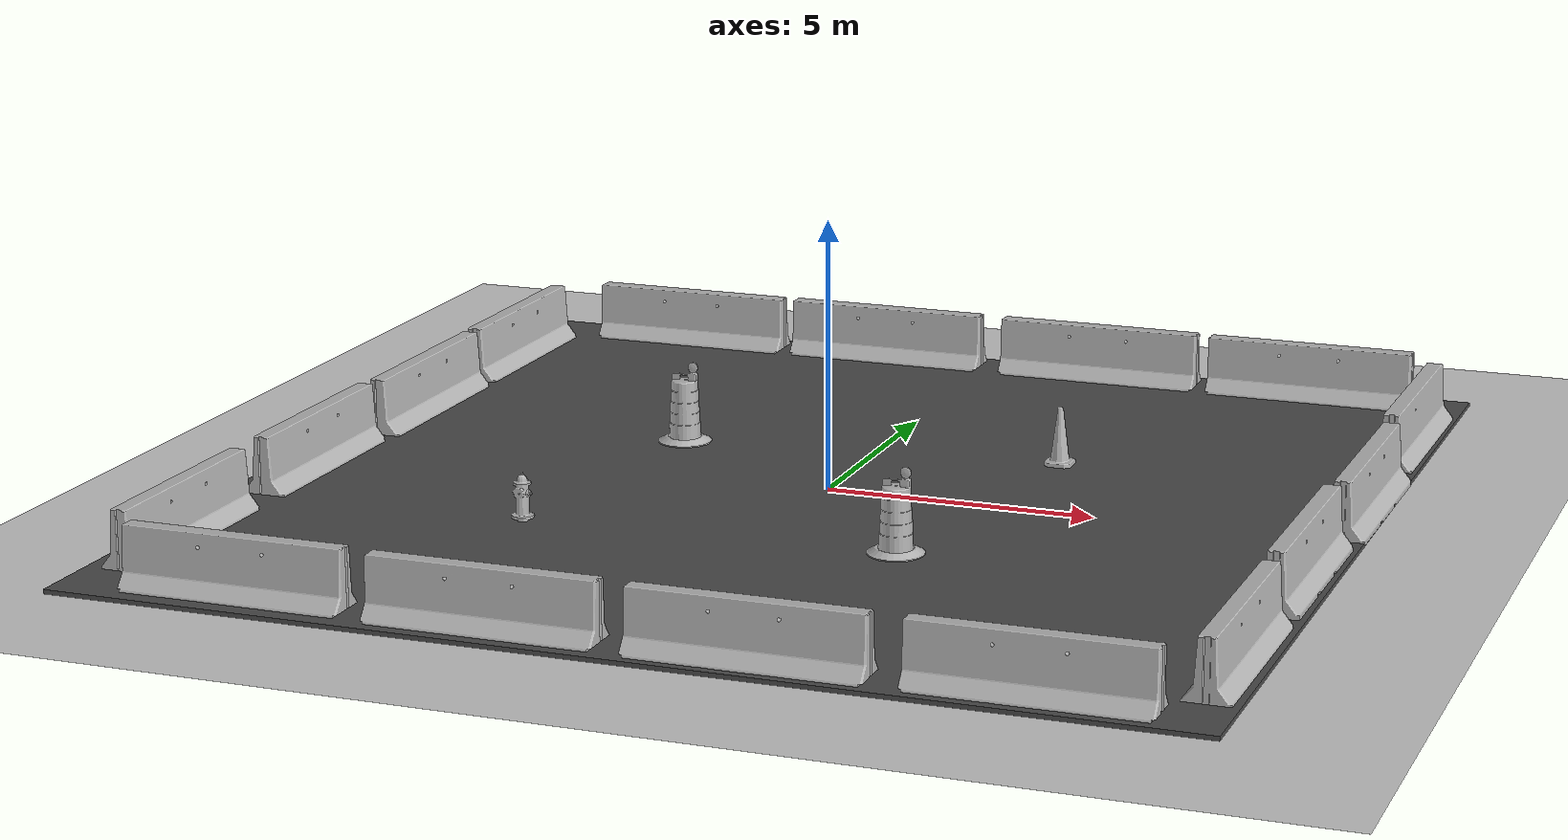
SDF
<sdf version="1.7">
 <world name="default">
  <light name="sun" type="directional">
   <pose>0 0 10 0 -0 0</pose>
   <diffuse>0.8 0.8 0.8 1</diffuse>
   <specular>0.2 0.2 0.2 1</specular>
   <attenuation>
    <range>1000</range>
    <constant>0.9</constant>
    <linear>0.01</linear>
    <quadratic>0.001</quadratic>
   </attenuation>
   <direction>-0.5 0.1 -0.9</direction>
   <spot><inner_angle>0</inner_angle><outer_angle>0</outer_angle><falloff>0</falloff></spot>
  </light>
  <model name="ground_plane">
   <static>1</static>
   <link name="link">
    <collision name="collision">
     <geometry><plane><normal>0 0 1</normal><size>100 100</size></plane></geometry>
     <surface>
      <contact><collide_bitmask>65535</collide_bitmask></contact>
      <friction><ode><mu>100</mu><mu2>50</mu2></ode></friction>
     </surface>
    </collision>
    <visual name="visual">
     <cast_shadows>0</cast_shadows>
     <geometry><plane><normal>0 0 1</normal><size>100 100</size></plane></geometry>
     <material>
      <script><uri>file://media/materials/scripts/gazebo.material</uri><name>Gazebo/Grey</name></script>
     </material>
    </visual>
   </link>
  </model>
  <gravity>0 0 -9.8</gravity>
  <magnetic_field>6e-06 2.3e-05 -4.2e-05</magnetic_field>
  <atmosphere type="adiabatic"/>
  <physics type="ode">
   <max_step_size>0.001</max_step_size>
   <real_time_factor>1</real_time_factor>
   <real_time_update_rate>1000</real_time_update_rate>
  </physics>
  <scene><ambient>0.4 0.4 0.4 1</ambient><background>0.7 0.7 0.7 1</background><shadows>1</shadows></scene>
  <spherical_coordinates>
   <surface_model>EARTH_WGS84</surface_model>
   <latitude_deg>0</latitude_deg>
   <longitude_deg>0</longitude_deg>
   <elevation>0</elevation>
   <heading_deg>0</heading_deg>
  </spherical_coordinates>
  <model name="asphalt_plane">
   <static>1</static>
   <link name="link">
    <collision name="collision"><geometry><box><size>20 20 0.1</size></box></geometry></collision>
    <visual name="visual">
     <cast_shadows>0</cast_shadows>
     <geometry><box><size>20 20 0.1</size></box></geometry>
     <material>
      <script>
       <uri>model://asphalt_plane/materials/scripts</uri>
       <uri>model://asphalt_plane/materials/textures</uri>
       <name>vrc/asphalt</name>
      </script>
     </material>
    </visual>
   </link>
   <pose>-0.159282 -0.084425 0 0 -0 0</pose>
  </model>
  <model name="jersey_barrier">
   <static>1</static>
   <link name="link">
    <visual name="visual">
     <geometry><mesh><uri>model://jersey_barrier/meshes/jersey_barrier.dae</uri></mesh></geometry>
    </visual>
    <collision name="upright">
     <pose>0 0 0.5715 0 -0 0</pose>
     <geometry><box><size>4.06542 0.3063 1.143</size></box></geometry>
    </collision>
    <collision name="base">
     <pose>0 0 0.032258 0 -0 0</pose>
     <geometry><box><size>4.06542 0.8107 0.064516</size></box></geometry>
    </collision>
    <collision name="base2">
     <pose>0 0 0.1 0 -0 0</pose>
     <geometry><box><size>4.06542 0.65 0.1</size></box></geometry>
    </collision>
    <collision name="base3">
     <pose>0 0 0.2 0 -0 0</pose>
     <geometry><box><size>4.06542 0.5 0.1</size></box></geometry>
    </collision>
    <collision name="left-angle">
     <pose>0 -0.224 0.2401 0.9 -0 0</pose>
     <geometry><box><size>4.06542 0.5 0.064516</size></box></geometry>
    </collision>
    <collision name="right-angle">
     <pose>0 0.224 0.2401 -0.9 0 0</pose>
     <geometry><box><size>4.06542 0.5 0.064516</size></box></geometry>
    </collision>
   </link>
   <pose>6.76996 -9.50064 0 0 -0 0</pose>
  </model>
  <model name="jersey_barrier_0">
   <static>1</static>
   <link name="link">
    <visual name="visual">
     <geometry><mesh><uri>model://jersey_barrier/meshes/jersey_barrier.dae</uri></mesh></geometry>
    </visual>
    <collision name="upright">
     <pose>0 0 0.5715 0 -0 0</pose>
     <geometry><box><size>4.06542 0.3063 1.143</size></box></geometry>
    </collision>
    <collision name="base">
     <pose>0 0 0.032258 0 -0 0</pose>
     <geometry><box><size>4.06542 0.8107 0.064516</size></box></geometry>
    </collision>
    <collision name="base2">
     <pose>0 0 0.1 0 -0 0</pose>
     <geometry><box><size>4.06542 0.65 0.1</size></box></geometry>
    </collision>
    <collision name="base3">
     <pose>0 0 0.2 0 -0 0</pose>
     <geometry><box><size>4.06542 0.5 0.1</size></box></geometry>
    </collision>
    <collision name="left-angle">
     <pose>0 -0.224 0.2401 0.9 -0 0</pose>
     <geometry><box><size>4.06542 0.5 0.064516</size></box></geometry>
    </collision>
    <collision name="right-angle">
     <pose>0 0.224 0.2401 -0.9 0 0</pose>
     <geometry><box><size>4.06542 0.5 0.064516</size></box></geometry>
    </collision>
   </link>
   <pose>2.1512 -9.52099 0 0 -0 0</pose>
  </model>
  <model name="jersey_barrier_1">
   <static>1</static>
   <link name="link">
    <visual name="visual">
     <geometry><mesh><uri>model://jersey_barrier/meshes/jersey_barrier.dae</uri></mesh></geometry>
    </visual>
    <collision name="upright">
     <pose>0 0 0.5715 0 -0 0</pose>
     <geometry><box><size>4.06542 0.3063 1.143</size></box></geometry>
    </collision>
    <collision name="base">
     <pose>0 0 0.032258 0 -0 0</pose>
     <geometry><box><size>4.06542 0.8107 0.064516</size></box></geometry>
    </collision>
    <collision name="base2">
     <pose>0 0 0.1 0 -0 0</pose>
     <geometry><box><size>4.06542 0.65 0.1</size></box></geometry>
    </collision>
    <collision name="base3">
     <pose>0 0 0.2 0 -0 0</pose>
     <geometry><box><size>4.06542 0.5 0.1</size></box></geometry>
    </collision>
    <collision name="left-angle">
     <pose>0 -0.224 0.2401 0.9 -0 0</pose>
     <geometry><box><size>4.06542 0.5 0.064516</size></box></geometry>
    </collision>
    <collision name="right-angle">
     <pose>0 0.224 0.2401 -0.9 0 0</pose>
     <geometry><box><size>4.06542 0.5 0.064516</size></box></geometry>
    </collision>
   </link>
   <pose>-2.4036 -9.46023 0 0 -0 0</pose>
  </model>
  <model name="jersey_barrier_2">
   <static>1</static>
   <link name="link">
    <visual name="visual">
     <geometry><mesh><uri>model://jersey_barrier/meshes/jersey_barrier.dae</uri></mesh></geometry>
    </visual>
    <collision name="upright">
     <pose>0 0 0.5715 0 -0 0</pose>
     <geometry><box><size>4.06542 0.3063 1.143</size></box></geometry>
    </collision>
    <collision name="base">
     <pose>0 0 0.032258 0 -0 0</pose>
     <geometry><box><size>4.06542 0.8107 0.064516</size></box></geometry>
    </collision>
    <collision name="base2">
     <pose>0 0 0.1 0 -0 0</pose>
     <geometry><box><size>4.06542 0.65 0.1</size></box></geometry>
    </collision>
    <collision name="base3">
     <pose>0 0 0.2 0 -0 0</pose>
     <geometry><box><size>4.06542 0.5 0.1</size></box></geometry>
    </collision>
    <collision name="left-angle">
     <pose>0 -0.224 0.2401 0.9 -0 0</pose>
     <geometry><box><size>4.06542 0.5 0.064516</size></box></geometry>
    </collision>
    <collision name="right-angle">
     <pose>0 0.224 0.2401 -0.9 0 0</pose>
     <geometry><box><size>4.06542 0.5 0.064516</size></box></geometry>
    </collision>
   </link>
   <pose>-6.92902 -9.37341 0 0 -0 0</pose>
  </model>
  <model name="jersey_barrier_3">
   <static>1</static>
   <link name="link">
    <visual name="visual">
     <geometry><mesh><uri>model://jersey_barrier/meshes/jersey_barrier.dae</uri></mesh></geometry>
    </visual>
    <collision name="upright">
     <pose>0 0 0.5715 0 -0 0</pose>
     <geometry><box><size>4.06542 0.3063 1.143</size></box></geometry>
    </collision>
    <collision name="base">
     <pose>0 0 0.032258 0 -0 0</pose>
     <geometry><box><size>4.06542 0.8107 0.064516</size></box></geometry>
    </collision>
    <collision name="base2">
     <pose>0 0 0.1 0 -0 0</pose>
     <geometry><box><size>4.06542 0.65 0.1</size></box></geometry>
    </collision>
    <collision name="base3">
     <pose>0 0 0.2 0 -0 0</pose>
     <geometry><box><size>4.06542 0.5 0.1</size></box></geometry>
    </collision>
    <collision name="left-angle">
     <pose>0 -0.224 0.2401 0.9 -0 0</pose>
     <geometry><box><size>4.06542 0.5 0.064516</size></box></geometry>
    </collision>
    <collision name="right-angle">
     <pose>0 0.224 0.2401 -0.9 0 0</pose>
     <geometry><box><size>4.06542 0.5 0.064516</size></box></geometry>
    </collision>
   </link>
   <pose>6.78702 9.15764 0 0 -0 0</pose>
  </model>
  <model name="jersey_barrier_3_clone">
   <static>1</static>
   <link name="link">
    <visual name="visual">
     <geometry><mesh><uri>model://jersey_barrier/meshes/jersey_barrier.dae</uri></mesh></geometry>
    </visual>
    <collision name="upright">
     <pose>0 0 0.5715 0 -0 0</pose>
     <geometry><box><size>4.06542 0.3063 1.143</size></box></geometry>
    </collision>
    <collision name="base">
     <pose>0 0 0.032258 0 -0 0</pose>
     <geometry><box><size>4.06542 0.8107 0.064516</size></box></geometry>
    </collision>
    <collision name="base2">
     <pose>0 0 0.1 0 -0 0</pose>
     <geometry><box><size>4.06542 0.65 0.1</size></box></geometry>
    </collision>
    <collision name="base3">
     <pose>0 0 0.2 0 -0 0</pose>
     <geometry><box><size>4.06542 0.5 0.1</size></box></geometry>
    </collision>
    <collision name="left-angle">
     <pose>0 -0.224 0.2401 0.9 -0 0</pose>
     <geometry><box><size>4.06542 0.5 0.064516</size></box></geometry>
    </collision>
    <collision name="right-angle">
     <pose>0 0.224 0.2401 -0.9 0 0</pose>
     <geometry><box><size>4.06542 0.5 0.064516</size></box></geometry>
    </collision>
   </link>
   <pose>2.45262 9.19509 0 0 -0 0</pose>
  </model>
  <model name="jersey_barrier_3_clone_0">
   <static>1</static>
   <link name="link">
    <visual name="visual">
     <geometry><mesh><uri>model://jersey_barrier/meshes/jersey_barrier.dae</uri></mesh></geometry>
    </visual>
    <collision name="upright">
     <pose>0 0 0.5715 0 -0 0</pose>
     <geometry><box><size>4.06542 0.3063 1.143</size></box></geometry>
    </collision>
    <collision name="base">
     <pose>0 0 0.032258 0 -0 0</pose>
     <geometry><box><size>4.06542 0.8107 0.064516</size></box></geometry>
    </collision>
    <collision name="base2">
     <pose>0 0 0.1 0 -0 0</pose>
     <geometry><box><size>4.06542 0.65 0.1</size></box></geometry>
    </collision>
    <collision name="base3">
     <pose>0 0 0.2 0 -0 0</pose>
     <geometry><box><size>4.06542 0.5 0.1</size></box></geometry>
    </collision>
    <collision name="left-angle">
     <pose>0 -0.224 0.2401 0.9 -0 0</pose>
     <geometry><box><size>4.06542 0.5 0.064516</size></box></geometry>
    </collision>
    <collision name="right-angle">
     <pose>0 0.224 0.2401 -0.9 0 0</pose>
     <geometry><box><size>4.06542 0.5 0.064516</size></box></geometry>
    </collision>
   </link>
   <pose>-2.07723 9.21662 0 0 -0 0</pose>
  </model>
  <model name="jersey_barrier_3_clone_1">
   <static>1</static>
   <link name="link">
    <visual name="visual">
     <geometry><mesh><uri>model://jersey_barrier/meshes/jersey_barrier.dae</uri></mesh></geometry>
    </visual>
    <collision name="upright">
     <pose>0 0 0.5715 0 -0 0</pose>
     <geometry><box><size>4.06542 0.3063 1.143</size></box></geometry>
    </collision>
    <collision name="base">
     <pose>0 0 0.032258 0 -0 0</pose>
     <geometry><box><size>4.06542 0.8107 0.064516</size></box></geometry>
    </collision>
    <collision name="base2">
     <pose>0 0 0.1 0 -0 0</pose>
     <geometry><box><size>4.06542 0.65 0.1</size></box></geometry>
    </collision>
    <collision name="base3">
     <pose>0 0 0.2 0 -0 0</pose>
     <geometry><box><size>4.06542 0.5 0.1</size></box></geometry>
    </collision>
    <collision name="left-angle">
     <pose>0 -0.224 0.2401 0.9 -0 0</pose>
     <geometry><box><size>4.06542 0.5 0.064516</size></box></geometry>
    </collision>
    <collision name="right-angle">
     <pose>0 0.224 0.2401 -0.9 0 0</pose>
     <geometry><box><size>4.06542 0.5 0.064516</size></box></geometry>
    </collision>
   </link>
   <pose>-6.38141 9.18298 0 0 -0 0</pose>
  </model>
  <model name="jersey_barrier_4">
   <static>1</static>
   <link name="link">
    <visual name="visual">
     <geometry><mesh><uri>model://jersey_barrier/meshes/jersey_barrier.dae</uri></mesh></geometry>
    </visual>
    <collision name="upright">
     <pose>0 0 0.5715 0 -0 0</pose>
     <geometry><box><size>4.06542 0.3063 1.143</size></box></geometry>
    </collision>
    <collision name="base">
     <pose>0 0 0.032258 0 -0 0</pose>
     <geometry><box><size>4.06542 0.8107 0.064516</size></box></geometry>
    </collision>
    <collision name="base2">
     <pose>0 0 0.1 0 -0 0</pose>
     <geometry><box><size>4.06542 0.65 0.1</size></box></geometry>
    </collision>
    <collision name="base3">
     <pose>0 0 0.2 0 -0 0</pose>
     <geometry><box><size>4.06542 0.5 0.1</size></box></geometry>
    </collision>
    <collision name="left-angle">
     <pose>0 -0.224 0.2401 0.9 -0 0</pose>
     <geometry><box><size>4.06542 0.5 0.064516</size></box></geometry>
    </collision>
    <collision name="right-angle">
     <pose>0 0.224 0.2401 -0.9 0 0</pose>
     <geometry><box><size>4.06542 0.5 0.064516</size></box></geometry>
    </collision>
   </link>
   <pose>9.3164 -6.8554 0 0 0 -1.57539</pose>
  </model>
  <model name="jersey_barrier_4_clone">
   <static>1</static>
   <link name="link">
    <visual name="visual">
     <geometry><mesh><uri>model://jersey_barrier/meshes/jersey_barrier.dae</uri></mesh></geometry>
    </visual>
    <collision name="upright">
     <pose>0 0 0.5715 0 -0 0</pose>
     <geometry><box><size>4.06542 0.3063 1.143</size></box></geometry>
    </collision>
    <collision name="base">
     <pose>0 0 0.032258 0 -0 0</pose>
     <geometry><box><size>4.06542 0.8107 0.064516</size></box></geometry>
    </collision>
    <collision name="base2">
     <pose>0 0 0.1 0 -0 0</pose>
     <geometry><box><size>4.06542 0.65 0.1</size></box></geometry>
    </collision>
    <collision name="base3">
     <pose>0 0 0.2 0 -0 0</pose>
     <geometry><box><size>4.06542 0.5 0.1</size></box></geometry>
    </collision>
    <collision name="left-angle">
     <pose>0 -0.224 0.2401 0.9 -0 0</pose>
     <geometry><box><size>4.06542 0.5 0.064516</size></box></geometry>
    </collision>
    <collision name="right-angle">
     <pose>0 0.224 0.2401 -0.9 0 0</pose>
     <geometry><box><size>4.06542 0.5 0.064516</size></box></geometry>
    </collision>
   </link>
   <pose>9.35373 -2.56437 0.07512 0 0 -1.57539</pose>
  </model>
  <model name="jersey_barrier_4_clone_0">
   <static>1</static>
   <link name="link">
    <visual name="visual">
     <geometry><mesh><uri>model://jersey_barrier/meshes/jersey_barrier.dae</uri></mesh></geometry>
    </visual>
    <collision name="upright">
     <pose>0 0 0.5715 0 -0 0</pose>
     <geometry><box><size>4.06542 0.3063 1.143</size></box></geometry>
    </collision>
    <collision name="base">
     <pose>0 0 0.032258 0 -0 0</pose>
     <geometry><box><size>4.06542 0.8107 0.064516</size></box></geometry>
    </collision>
    <collision name="base2">
     <pose>0 0 0.1 0 -0 0</pose>
     <geometry><box><size>4.06542 0.65 0.1</size></box></geometry>
    </collision>
    <collision name="base3">
     <pose>0 0 0.2 0 -0 0</pose>
     <geometry><box><size>4.06542 0.5 0.1</size></box></geometry>
    </collision>
    <collision name="left-angle">
     <pose>0 -0.224 0.2401 0.9 -0 0</pose>
     <geometry><box><size>4.06542 0.5 0.064516</size></box></geometry>
    </collision>
    <collision name="right-angle">
     <pose>0 0.224 0.2401 -0.9 0 0</pose>
     <geometry><box><size>4.06542 0.5 0.064516</size></box></geometry>
    </collision>
   </link>
   <pose>9.4507 1.97364 0 0 0 -1.57539</pose>
  </model>
  <model name="jersey_barrier_4_clone_1">
   <static>1</static>
   <link name="link">
    <visual name="visual">
     <geometry><mesh><uri>model://jersey_barrier/meshes/jersey_barrier.dae</uri></mesh></geometry>
    </visual>
    <collision name="upright">
     <pose>0 0 0.5715 0 -0 0</pose>
     <geometry><box><size>4.06542 0.3063 1.143</size></box></geometry>
    </collision>
    <collision name="base">
     <pose>0 0 0.032258 0 -0 0</pose>
     <geometry><box><size>4.06542 0.8107 0.064516</size></box></geometry>
    </collision>
    <collision name="base2">
     <pose>0 0 0.1 0 -0 0</pose>
     <geometry><box><size>4.06542 0.65 0.1</size></box></geometry>
    </collision>
    <collision name="base3">
     <pose>0 0 0.2 0 -0 0</pose>
     <geometry><box><size>4.06542 0.5 0.1</size></box></geometry>
    </collision>
    <collision name="left-angle">
     <pose>0 -0.224 0.2401 0.9 -0 0</pose>
     <geometry><box><size>4.06542 0.5 0.064516</size></box></geometry>
    </collision>
    <collision name="right-angle">
     <pose>0 0.224 0.2401 -0.9 0 0</pose>
     <geometry><box><size>4.06542 0.5 0.064516</size></box></geometry>
    </collision>
   </link>
   <pose>9.36099 6.53059 0 0 0 -1.57539</pose>
  </model>
  <model name="jersey_barrier_4_clone_1_clone">
   <static>1</static>
   <link name="link">
    <visual name="visual">
     <geometry><mesh><uri>model://jersey_barrier/meshes/jersey_barrier.dae</uri></mesh></geometry>
    </visual>
    <collision name="upright">
     <pose>0 0 0.5715 0 -0 0</pose>
     <geometry><box><size>4.06542 0.3063 1.143</size></box></geometry>
    </collision>
    <collision name="base">
     <pose>0 0 0.032258 0 -0 0</pose>
     <geometry><box><size>4.06542 0.8107 0.064516</size></box></geometry>
    </collision>
    <collision name="base2">
     <pose>0 0 0.1 0 -0 0</pose>
     <geometry><box><size>4.06542 0.65 0.1</size></box></geometry>
    </collision>
    <collision name="base3">
     <pose>0 0 0.2 0 -0 0</pose>
     <geometry><box><size>4.06542 0.5 0.1</size></box></geometry>
    </collision>
    <collision name="left-angle">
     <pose>0 -0.224 0.2401 0.9 -0 0</pose>
     <geometry><box><size>4.06542 0.5 0.064516</size></box></geometry>
    </collision>
    <collision name="right-angle">
     <pose>0 0.224 0.2401 -0.9 0 0</pose>
     <geometry><box><size>4.06542 0.5 0.064516</size></box></geometry>
    </collision>
   </link>
   <pose>-9.26137 6.6348 0 0 0 -1.57539</pose>
  </model>
  <model name="jersey_barrier_4_clone_1_clone_0">
   <static>1</static>
   <link name="link">
    <visual name="visual">
     <geometry><mesh><uri>model://jersey_barrier/meshes/jersey_barrier.dae</uri></mesh></geometry>
    </visual>
    <collision name="upright">
     <pose>0 0 0.5715 0 -0 0</pose>
     <geometry><box><size>4.06542 0.3063 1.143</size></box></geometry>
    </collision>
    <collision name="base">
     <pose>0 0 0.032258 0 -0 0</pose>
     <geometry><box><size>4.06542 0.8107 0.064516</size></box></geometry>
    </collision>
    <collision name="base2">
     <pose>0 0 0.1 0 -0 0</pose>
     <geometry><box><size>4.06542 0.65 0.1</size></box></geometry>
    </collision>
    <collision name="base3">
     <pose>0 0 0.2 0 -0 0</pose>
     <geometry><box><size>4.06542 0.5 0.1</size></box></geometry>
    </collision>
    <collision name="left-angle">
     <pose>0 -0.224 0.2401 0.9 -0 0</pose>
     <geometry><box><size>4.06542 0.5 0.064516</size></box></geometry>
    </collision>
    <collision name="right-angle">
     <pose>0 0.224 0.2401 -0.9 0 0</pose>
     <geometry><box><size>4.06542 0.5 0.064516</size></box></geometry>
    </collision>
   </link>
   <pose>-9.24924 2.33096 0 0 0 -1.57539</pose>
  </model>
  <model name="jersey_barrier_4_clone_1_clone_1">
   <static>1</static>
   <link name="link">
    <visual name="visual">
     <geometry><mesh><uri>model://jersey_barrier/meshes/jersey_barrier.dae</uri></mesh></geometry>
    </visual>
    <collision name="upright">
     <pose>0 0 0.5715 0 -0 0</pose>
     <geometry><box><size>4.06542 0.3063 1.143</size></box></geometry>
    </collision>
    <collision name="base">
     <pose>0 0 0.032258 0 -0 0</pose>
     <geometry><box><size>4.06542 0.8107 0.064516</size></box></geometry>
    </collision>
    <collision name="base2">
     <pose>0 0 0.1 0 -0 0</pose>
     <geometry><box><size>4.06542 0.65 0.1</size></box></geometry>
    </collision>
    <collision name="base3">
     <pose>0 0 0.2 0 -0 0</pose>
     <geometry><box><size>4.06542 0.5 0.1</size></box></geometry>
    </collision>
    <collision name="left-angle">
     <pose>0 -0.224 0.2401 0.9 -0 0</pose>
     <geometry><box><size>4.06542 0.5 0.064516</size></box></geometry>
    </collision>
    <collision name="right-angle">
     <pose>0 0.224 0.2401 -0.9 0 0</pose>
     <geometry><box><size>4.06542 0.5 0.064516</size></box></geometry>
    </collision>
   </link>
   <pose>-9.3695 -1.99711 0 0 0 -1.57539</pose>
  </model>
  <model name="jersey_barrier_4_clone_1_clone_2">
   <static>1</static>
   <link name="link">
    <visual name="visual">
     <geometry><mesh><uri>model://jersey_barrier/meshes/jersey_barrier.dae</uri></mesh></geometry>
    </visual>
    <collision name="upright">
     <pose>0 0 0.5715 0 -0 0</pose>
     <geometry><box><size>4.06542 0.3063 1.143</size></box></geometry>
    </collision>
    <collision name="base">
     <pose>0 0 0.032258 0 -0 0</pose>
     <geometry><box><size>4.06542 0.8107 0.064516</size></box></geometry>
    </collision>
    <collision name="base2">
     <pose>0 0 0.1 0 -0 0</pose>
     <geometry><box><size>4.06542 0.65 0.1</size></box></geometry>
    </collision>
    <collision name="base3">
     <pose>0 0 0.2 0 -0 0</pose>
     <geometry><box><size>4.06542 0.5 0.1</size></box></geometry>
    </collision>
    <collision name="left-angle">
     <pose>0 -0.224 0.2401 0.9 -0 0</pose>
     <geometry><box><size>4.06542 0.5 0.064516</size></box></geometry>
    </collision>
    <collision name="right-angle">
     <pose>0 0.224 0.2401 -0.9 0 0</pose>
     <geometry><box><size>4.06542 0.5 0.064516</size></box></geometry>
    </collision>
   </link>
   <pose>-9.42011 -6.81116 0 0 0 -1.57539</pose>
  </model>
  <model name="Construction Barrel">
   <link name="link">
    <inertial>
     <pose>0 0 0.4 0 -0 0</pose>
     <mass>500</mass>
     <inertia><ixx>51.2096</ixx><iyy>51.2096</iyy><izz>25</izz><ixy>0</ixy><ixz>0</ixz><iyz>0</iyz></inertia>
    </inertial>
    <collision name="collision">
     <geometry><mesh><uri>model://construction_barrel/meshes/construction_barrel.dae</uri></mesh></geometry>
    </collision>
    <visual name="visual">
     <geometry><mesh><uri>model://construction_barrel/meshes/construction_barrel.dae</uri></mesh></geometry>
    </visual>
   </link>
   <pose>-3.63414 1.99521 0.049999 -1e-06 -3e-06 3.2e-05</pose>
  </model>
  <model name="Construction Cone">
   <link name="link">
    <collision name="collision">
     <geometry>
      <mesh><scale>10 10 10</scale><uri>model://construction_cone/meshes/construction_cone.dae</uri></mesh>
     </geometry>
    </collision>
    <visual name="visual">
     <geometry>
      <mesh><scale>10 10 10</scale><uri>model://construction_cone/meshes/construction_cone.dae</uri></mesh>
     </geometry>
    </visual>
    <inertial>
     <inertia><ixx>1</ixx><ixy>0</ixy><ixz>0</ixz><iyy>1</iyy><iyz>0</iyz><izz>1</izz></inertia>
     <mass>1</mass>
    </inertial>
   </link>
   <pose>3.50185 2.9127 0.049991 2e-06 3e-06 0</pose>
  </model>
  <model name="fire_hydrant">
   <static>1</static>
   <link name="link">
    <collision name="collision">
     <geometry><mesh><uri>model://fire_hydrant/meshes/fire_hydrant.dae</uri></mesh></geometry>
    </collision>
    <visual name="visual">
     <geometry><mesh><uri>model://fire_hydrant/meshes/fire_hydrant.dae</uri></mesh></geometry>
    </visual>
   </link>
   <pose>-4.34504 -3.78531 0 0 -0 0</pose>
  </model>
  <model name="Construction Barrel_0">
   <link name="link">
    <inertial>
     <pose>0 0 0.4 0 -0 0</pose>
     <mass>500</mass>
     <inertia><ixx>51.2096</ixx><iyy>51.2096</iyy><izz>25</izz><ixy>0</ixy><ixz>0</ixz><iyz>0</iyz></inertia>
    </inertial>
    <collision name="collision">
     <geometry><mesh><uri>model://construction_barrel/meshes/construction_barrel.dae</uri></mesh></geometry>
    </collision>
    <visual name="visual">
     <geometry><mesh><uri>model://construction_barrel/meshes/construction_barrel.dae</uri></mesh></geometry>
    </visual>
   </link>
   <pose>2.43863 -3.30247 0.049999 3e-06 -0 2.2e-05</pose>
  </model>
 </world>
</sdf>
